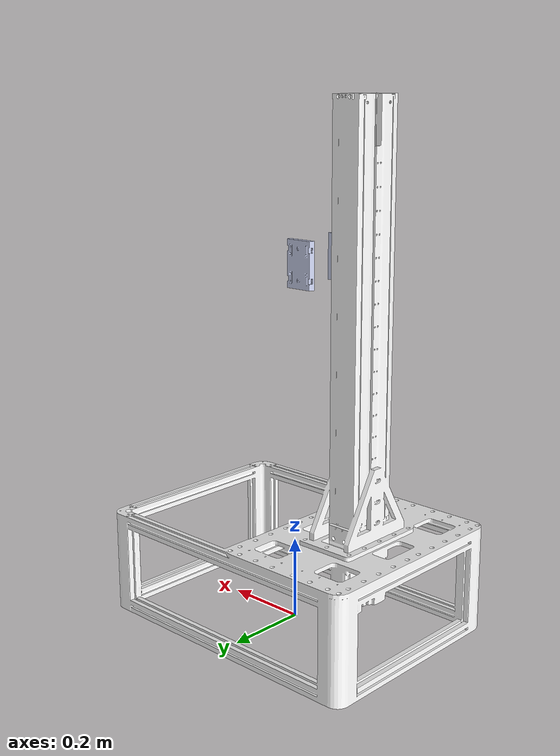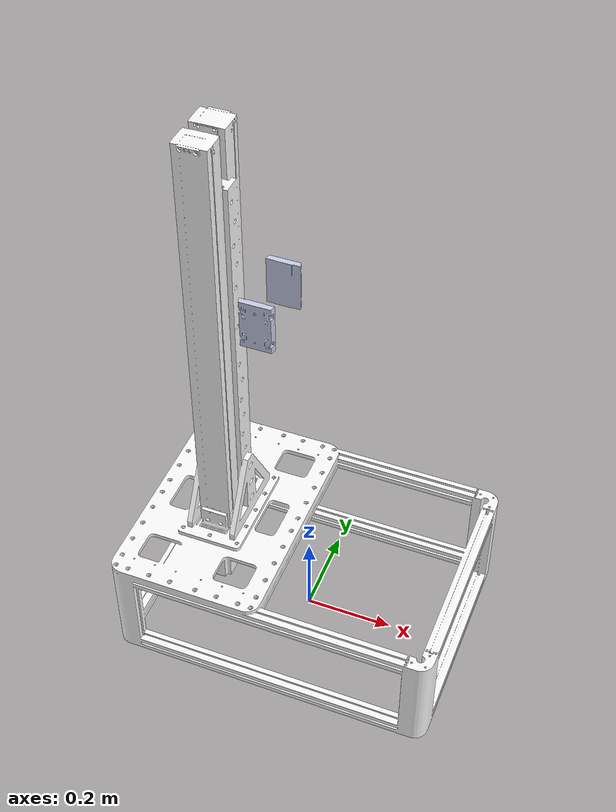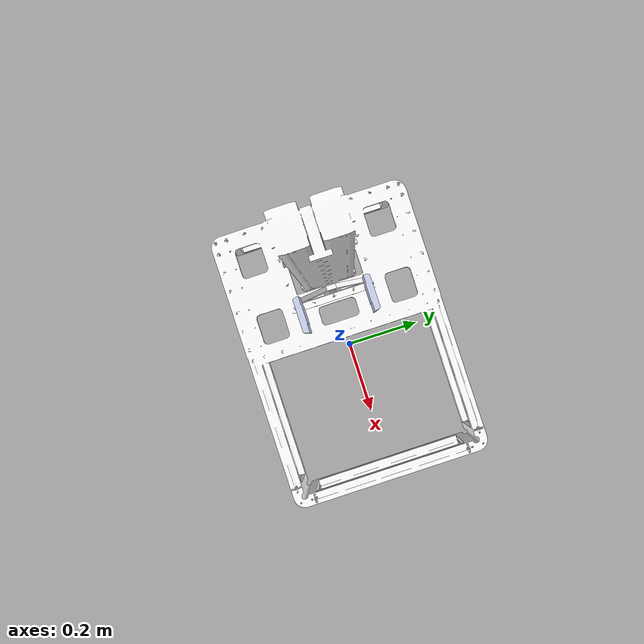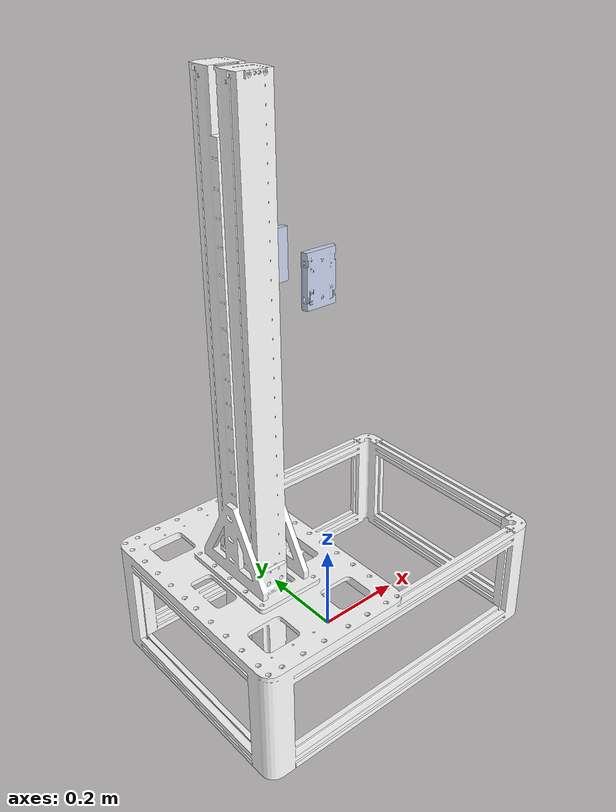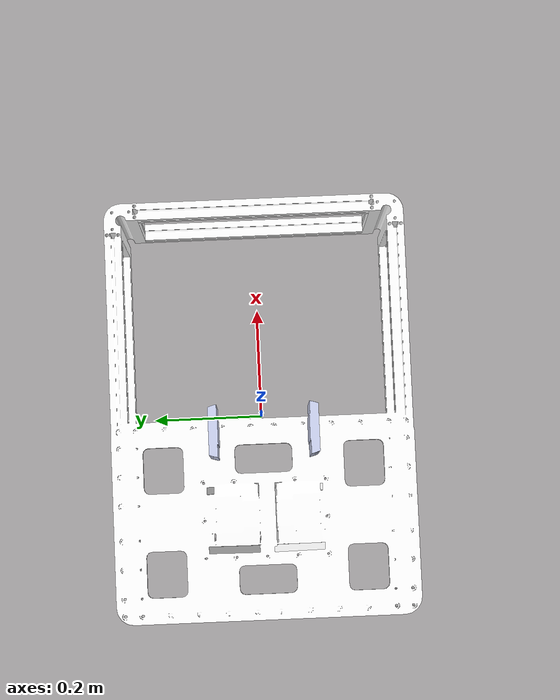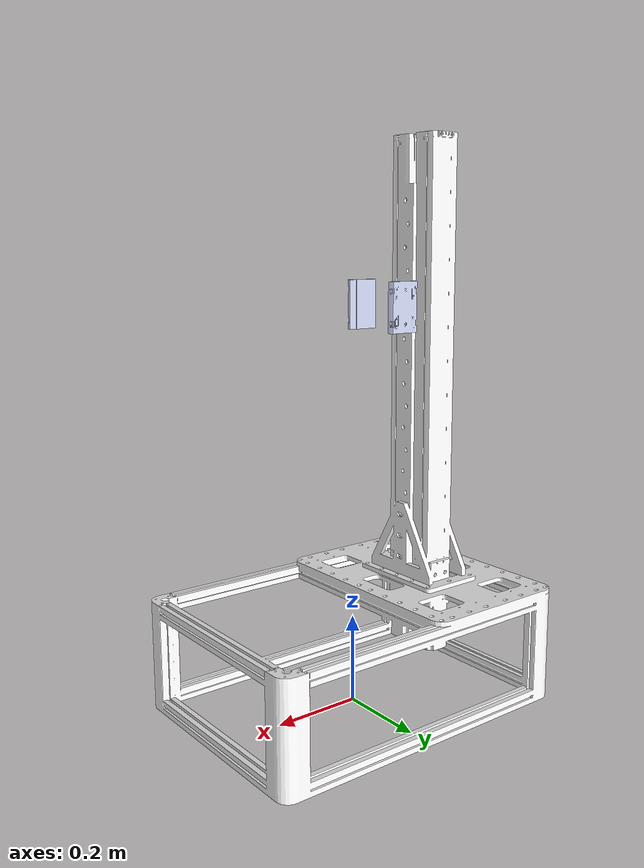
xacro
<?xml version="1.0"?>
<!-- Revolute-Revolute Manipulator -->
<robot name="slide_rail" xmlns:xacro="http://www.ros.org/wiki/xacro">

  <link
    name="base_link">
    <inertial>
      <origin
        xyz="-0.0851417739507414 -0.00235325608423029 0.461901876327646"
        rpy="0 0 0" />
      <mass
        value="1300.2157378026818" />
      <inertia
        ixx="1.5723643860749"
        ixy="-0.0018400889955638"
        ixz="-0.0259807481556023"
        iyy="1.56653528372694"
        iyz="-0.0223413171800455"
        izz="0.0334677964955424" />
    </inertial>
    <visual>
      <origin
        xyz="0 0 0"
        rpy="0 0 0" />
      <geometry>
        <mesh
          filename="package://slide_rail/meshes/base_link.STL" />
      </geometry>
      <material
        name="">
        <color
          rgba="1 1 1 1" />
      </material>
    </visual>
    <collision>
      <origin
        xyz="0 0 0"
        rpy="0 0 0" />
      <geometry>
        <mesh
          filename="package://slide_rail/meshes/base_link.STL" />
      </geometry>
    </collision>
  </link>
  <link
    name="slide_right">
    <inertial>
      <origin
        xyz="0 0.022625966524659 0"
        rpy="0 0 0" />
      <mass
        value="0.2915148495066668" />
      <inertia
        ixx="1.50001518227245"
        ixy="6.65500499430702E-09"
        ixz="-5.17853701338548E-09"
        iyy="1.50418097290043"
        iyz="-1.04084246775258E-09"
        izz="0.029919292165612" />
    </inertial>
    <visual>
      <origin
        xyz="0 0 0"
        rpy="0 0 0" />
      <geometry>
        <mesh
          filename="package://slide_rail/meshes/Arm_Base_R_Link.STL" />
      </geometry>
      <material
        name="">
        <color
          rgba="0.792156862745098 0.819607843137255 0.933333333333333 1" />
      </material>
    </visual>
    <collision>
      <origin
        xyz="0 0 0"
        rpy="0 0 0" />
      <geometry>
        <mesh
          filename="package://slide_rail/meshes/Arm_Base_R_Link.STL" />
      </geometry>
    </collision>
  </link>
  <joint
    name="joint_right"
    type="prismatic">
    <origin
      xyz="-0.08 -0.0925 0.88886"
      rpy="0 0 0" />
    <parent
      link="base_link" />
    <child
      link="slide_right" />
    <axis
      xyz="0 0 1" />
    <limit
      lower="-0.8"
      upper="0"
      effort="500"
      velocity="100" />
  </joint>
  <link
    name="slide_left">
    <inertial>
      <origin
        xyz="0 -0.022625966524659 0"
        rpy="0 0 0" />
      <mass
        value="0.2915148495066669" />
      <inertia
        ixx="1.501518227246"
        ixy="6.655004994278E-09"
        ixz="5.1785370134074E-09"
        iyy="1.50418097290043"
        iyz="1.04084246778742E-09"
        izz="0.29919292165613" />
    </inertial>
    <visual>
      <origin
        xyz="0 0 0"
        rpy="0 0 0" />
      <geometry>
        <mesh
          filename="package://slide_rail/meshes/Arm_Base_L_Link.STL" />
      </geometry>
      <material
        name="">
        <color
          rgba="0.792156862745098 0.819607843137255 0.933333333333333 1" />
      </material>
    </visual>
    <collision>
      <origin
        xyz="0 0 0"
        rpy="0 0 0" />
      <geometry>
        <mesh
          filename="package://slide_rail/meshes/Arm_Base_L_Link.STL" />
      </geometry>
    </collision>
  </link>
  <joint
    name="joint_left"
    type="prismatic">
    <origin
      xyz="-0.08 0.0925 0.88886"
      rpy="0 0 0" />
    <parent
      link="base_link" />
    <child
      link="slide_left" />
    <axis
      xyz="0 0 1" />
    <limit
      lower="-0.8"
      upper="0"
      effort="500"
      velocity="100" />
  </joint>

  <transmission name="slide_tran_r">
    <type>transmission_interface/SimpleTransmission</type>
    <joint name="joint_right">
      <hardwareInterface>hardware_interface/EffortJointInterface</hardwareInterface>
    </joint>
    <actuator name="slide_motor_r">
      <hardwareInterface>hardware_interface/EffortJointInterface</hardwareInterface>
      <mechanicalReduction>1</mechanicalReduction>
    </actuator>
  </transmission>

  <transmission name="slide_tran_l">
    <type>transmission_interface/SimpleTransmission</type>
    <joint name="joint_left">
      <hardwareInterface>hardware_interface/EffortJointInterface</hardwareInterface>
    </joint>
    <actuator name="slide_motor_l">
      <hardwareInterface>hardware_interface/EffortJointInterface</hardwareInterface>
      <mechanicalReduction>1</mechanicalReduction>
    </actuator>
  </transmission>

</robot>
